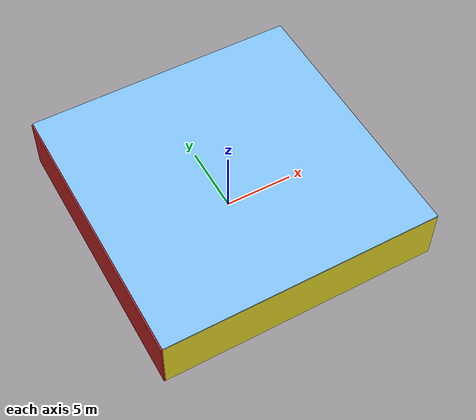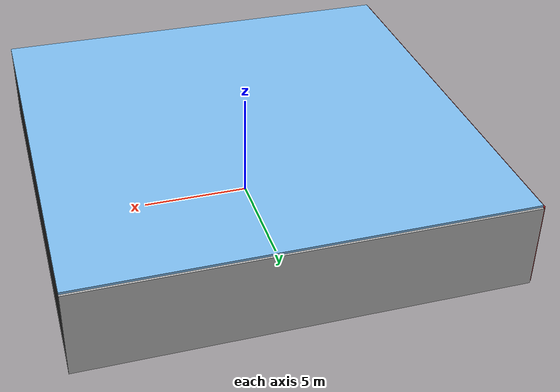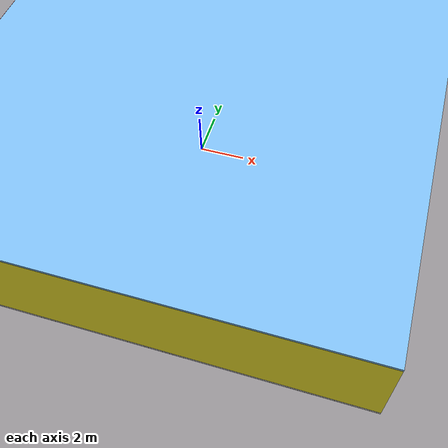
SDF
<sdf version="1.4">
 <world name="default">
  <physics type="ode">
   <max_step_size>0.001</max_step_size>
   <real_time_factor>1</real_time_factor>
   <real_time_update_rate>1000</real_time_update_rate>
   <gravity>0 0 -9.8</gravity>
  </physics>
  <scene><ambient>0.4 0.4 0.4 1</ambient><background>0.7 0.7 0.7 1</background><shadows>1</shadows></scene>
  <model name="Surrounding">
   <static>1</static>
   <link name="Ceiling">
    <collision name="Ceiling_Collision"><geometry><box><size>20 20 0.1</size></box></geometry></collision>
    <visual name="Ceiling_Visual">
     <geometry><box><size>20 20 0.1</size></box></geometry>
     <material>
      <script><uri>file://media/materials/scripts/gazebo.material</uri><name>Gazebo/SkyBlue</name></script>
     </material>
    </visual>
    <pose>0 0 4.05 0 0 0</pose>
   </link>
   <link name="Wall_South">
    <collision name="Wall_South_Collision">
     <geometry><box><size>20 0 4</size></box></geometry>
     <pose>0 0 2 0 -0 0</pose>
    </collision>
    <visual name="Wall_South_Visual">
     <pose>0 0 2 0 -0 0</pose>
     <geometry><box><size>20 0 4</size></box></geometry>
     <material>
      <script><uri>file://media/materials/scripts/gazebo.material</uri><name>Gazebo/YellowGlow</name></script>
     </material>
    </visual>
    <velocity_decay><linear>0</linear><angular>0</angular></velocity_decay>
    <pose>0 -10 0 0 -0 0</pose>
   </link>
   <link name="Wall_East">
    <collision name="Wall_21_Collision">
     <geometry><box><size>20 0 4</size></box></geometry>
     <pose>0 0 2 0 -0 0</pose>
    </collision>
    <visual name="Wall_21_Visual">
     <pose>0 0 2 0 -0 0</pose>
     <geometry><box><size>20 0 4</size></box></geometry>
     <material>
      <script><uri>file://media/materials/scripts/gazebo.material</uri><name>Gazebo/FlatBlack</name></script>
     </material>
    </visual>
    <velocity_decay><linear>0</linear><angular>0</angular></velocity_decay>
    <pose>10 0 0 0 -0 1.5708</pose>
   </link>
   <link name="Wall_North">
    <collision name="Wall_22_Collision">
     <geometry><box><size>20 0.2 4</size></box></geometry>
     <pose>0 0 2 0 -0 0</pose>
    </collision>
    <visual name="Wall_22_Visual">
     <pose>0 0 2 0 -0 0</pose>
     <geometry><box><size>20 0.2 4</size></box></geometry>
     <material>
      <script><uri>file://media/materials/scripts/gazebo.material</uri><name>Gazebo/CloudySky</name></script>
     </material>
    </visual>
    <velocity_decay><linear>0</linear><angular>0</angular></velocity_decay>
    <pose>0 10 0 0 -0 0</pose>
   </link>
   <link name="Wall_West">
    <collision name="Wall_23_Collision">
     <geometry><box><size>20 0.2 4</size></box></geometry>
     <pose>0 0 2 0 -0 0</pose>
    </collision>
    <visual name="Wall_23_Visual">
     <pose>0 0 2 0 -0 0</pose>
     <geometry><box><size>20 0.2 4</size></box></geometry>
     <material>
      <script><uri>file://media/materials/scripts/gazebo.material</uri><name>Gazebo/RedGlow</name></script>
     </material>
    </visual>
    <velocity_decay><linear>0</linear><angular>0</angular></velocity_decay>
    <pose>-10 0 0 0 0 -1.5708</pose>
   </link>
   <link name="Ground_link">
    <collision name="collision">
     <pose>0 0 .05 0 -0 0</pose>
     <geometry><box><size>20 20 0.1</size></box></geometry>
    </collision>
    <visual name="visual">
     <pose>0 0 .05 0 -0 0</pose>
     <geometry><box><size>20 20 0.1</size></box></geometry>
     <material>
      <script><uri>file://media/materials/scripts/gazebo.material</uri><name>Gazebo/White</name></script>
     </material>
    </visual>
   </link>
   <static>1</static>
  </model>
  <spherical_coordinates>
   <surface_model>EARTH_WGS84</surface_model>
   <latitude_deg>0</latitude_deg>
   <longitude_deg>0</longitude_deg>
   <elevation>0</elevation>
   <heading_deg>0</heading_deg>
  </spherical_coordinates>
  <light name="lightball_0" type="diffuse">
   <diffuse>0.8 0.8 0.8 1</diffuse>
   <specular>0.2 0.2 0.2 1</specular>
   <attenuation>
    <range>100</range>
    <constant>0.7</constant>
    <linear>0.01</linear>
    <quadratic>0.001</quadratic>
   </attenuation>
   <direction>-0.5 0.1 -0.9</direction>
   <pose>-3.55795429675 1.38139529198 1.88055291075 0 0 0</pose>
  </light>
  <light name="lightball_1" type="diffuse">
   <diffuse>0.8 0.8 0.8 1</diffuse>
   <specular>0.2 0.2 0.2 1</specular>
   <attenuation>
    <range>100</range>
    <constant>0.7</constant>
    <linear>0.01</linear>
    <quadratic>0.001</quadratic>
   </attenuation>
   <direction>-0.5 0.1 -0.9</direction>
   <pose>4.1019749367 2.01692981164 3.43761933665 0 0 0</pose>
  </light>
  <light name="lightball_2" type="diffuse">
   <diffuse>0.8 0.8 0.8 1</diffuse>
   <specular>0.2 0.2 0.2 1</specular>
   <attenuation>
    <range>100</range>
    <constant>0.7</constant>
    <linear>0.01</linear>
    <quadratic>0.001</quadratic>
   </attenuation>
   <direction>-0.5 0.1 -0.9</direction>
   <pose>5.73428166819 6.55030004608 2.99337081342 0 0 0</pose>
  </light>
  <light name="lightball_3" type="diffuse">
   <diffuse>0.8 0.8 0.8 1</diffuse>
   <specular>0.2 0.2 0.2 1</specular>
   <attenuation>
    <range>100</range>
    <constant>0.7</constant>
    <linear>0.01</linear>
    <quadratic>0.001</quadratic>
   </attenuation>
   <direction>-0.5 0.1 -0.9</direction>
   <pose>7.52283356932 3.3150471574 3.4910726107 0 0 0</pose>
  </light>
  <light name="lightball_4" type="diffuse">
   <diffuse>0.8 0.8 0.8 1</diffuse>
   <specular>0.2 0.2 0.2 1</specular>
   <attenuation>
    <range>100</range>
    <constant>0.7</constant>
    <linear>0.01</linear>
    <quadratic>0.001</quadratic>
   </attenuation>
   <direction>-0.5 0.1 -0.9</direction>
   <pose>0.0176570866603 4.56041565007 2.98865253659 0 0 0</pose>
  </light>
  <light name="lightball_5" type="diffuse">
   <diffuse>0.8 0.8 0.8 1</diffuse>
   <specular>0.2 0.2 0.2 1</specular>
   <attenuation>
    <range>100</range>
    <constant>0.7</constant>
    <linear>0.01</linear>
    <quadratic>0.001</quadratic>
   </attenuation>
   <direction>-0.5 0.1 -0.9</direction>
   <pose>-9.68251081821 3.00190455369 2.26370231458 0 0 0</pose>
  </light>
  <light name="lightball_6" type="diffuse">
   <diffuse>0.8 0.8 0.8 1</diffuse>
   <specular>0.2 0.2 0.2 1</specular>
   <attenuation>
    <range>100</range>
    <constant>0.7</constant>
    <linear>0.01</linear>
    <quadratic>0.001</quadratic>
   </attenuation>
   <direction>-0.5 0.1 -0.9</direction>
   <pose>-8.28108436364 3.31739729137 3.41568776252 0 0 0</pose>
  </light>
  <light name="lightball_7" type="diffuse">
   <diffuse>0.8 0.8 0.8 1</diffuse>
   <specular>0.2 0.2 0.2 1</specular>
   <attenuation>
    <range>100</range>
    <constant>0.7</constant>
    <linear>0.01</linear>
    <quadratic>0.001</quadratic>
   </attenuation>
   <direction>-0.5 0.1 -0.9</direction>
   <pose>1.05083699234 9.10865262736 0.849671388936 0 0 0</pose>
  </light>
  <light name="lightball_8" type="diffuse">
   <diffuse>0.8 0.8 0.8 1</diffuse>
   <specular>0.2 0.2 0.2 1</specular>
   <attenuation>
    <range>100</range>
    <constant>0.7</constant>
    <linear>0.01</linear>
    <quadratic>0.001</quadratic>
   </attenuation>
   <direction>-0.5 0.1 -0.9</direction>
   <pose>-5.37632468472 -5.51234656287 2.20743293471 0 0 0</pose>
  </light>
  <light name="lightball_9" type="diffuse">
   <diffuse>0.8 0.8 0.8 1</diffuse>
   <specular>0.2 0.2 0.2 1</specular>
   <attenuation>
    <range>100</range>
    <constant>0.7</constant>
    <linear>0.01</linear>
    <quadratic>0.001</quadratic>
   </attenuation>
   <direction>-0.5 0.1 -0.9</direction>
   <pose>8.62715297983 0.871671295505 3.66208352639 0 0 0</pose>
  </light>
  <include>
   <uri>model://textured_shapes</uri>
   <pose>-4.00349874968 1.47181966361 0 0 0 1.26260197735</pose>
  </include>
  <include><uri>model://table</uri><pose>-0.99367484156 1.31491106031 0 0 0 2.13751151331</pose></include>
  <include>
   <uri>model://textured_shapes</uri>
   <pose>0.918325968027 -0.80066882535 0 0 0 2.07815592342</pose>
  </include>
  <include>
   <uri>model://textured_shapes</uri>
   <pose>3.8141084328 -4.61811667257 0 0 0 0.812450857698</pose>
  </include>
  <include>
   <uri>model://construction_cone</uri>
   <pose>5.24899772532 7.29948824414 0 0 0 1.24088478068</pose>
  </include>
 </world>
</sdf>

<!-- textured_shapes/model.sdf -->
<sdf version="1.6">
  <model name="textured_shapes">
    <pose>0 0 0.5 0 0 0</pose>
    <link name="box">
      <pose>0 -1.5 0 0 0 0</pose>
      <collision name="collision">
        <geometry>
          <box>
            <size>1 1 1</size>
          </box>
        </geometry>
      </collision>
      <visual name="visual">
        <geometry>
          <box>
            <size>1 1 1</size>
          </box>
        </geometry>
        <material>
          <script>
            <uri>model://../model_source/models/textured_shapes/materials/scripts</uri>
            <uri>model://../model_source/models/textured_shapes/materials/textures</uri>
            <name>TexturedShape/Squares</name>
          </script>
        </material>
      </visual>
    </link>
    <link name="sphere">
      <collision name="collision">
        <geometry>
          <sphere>
            <radius>0.5</radius>
          </sphere>
        </geometry>
      </collision>
      <visual name="visual">
        <geometry>
          <sphere>
            <radius>0.5</radius>
          </sphere>
        </geometry>
        <material>
          <script>
            <uri>model://../model_source/models/textured_shapes/materials/scripts</uri>
            <uri>model://../model_source/models/textured_shapes/materials/textures</uri>
            <name>TexturedShape/Squares</name>
          </script>
        </material>
      </visual>
    </link>
    <link name="cylinder">
      <pose>0 1.5 0 0 0 0</pose>
      <collision name="collision">
        <geometry>
          <cylinder>
            <radius>0.5</radius>
            <length>1</length>
          </cylinder>
        </geometry>
      </collision>
      <visual name="visual">
        <geometry>
          <cylinder>
            <radius>0.5</radius>
            <length>1</length>
          </cylinder>
        </geometry>
        <material>
          <script>
            <uri>model://../model_source/models/textured_shapes/materials/scripts</uri>
            <uri>model://../model_source/models/textured_shapes/materials/textures</uri>
            <name>TexturedShape/Squares</name>
          </script>
        </material>
      </visual>
    </link>
  </model>
</sdf>

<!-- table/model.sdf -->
<sdf version="1.5">
  <model name="table">
    <static>true</static>
    <link name="link">
      <collision name="surface">
        <pose>0 0 1.0 0 0 0</pose>
        <geometry>
          <box>
            <size>1.5 0.8 0.03</size>
          </box>
        </geometry>
        <surface>
          <friction>
            <ode>
              <mu>0.6</mu>
              <mu2>0.6</mu2>
            </ode>
          </friction>
        </surface>
      </collision>
      <visual name="visual1">
        <pose>0 0 1.0 0 0 0</pose>
        <geometry>
          <box>
            <size>1.5 0.8 0.03</size>
          </box>
        </geometry>
        <material>
          <script>
            <uri>model://media/materials/scripts/gazebo.material</uri>
            <name>Gazebo/Wood</name>
          </script>
        </material>
      </visual>
      <collision name="front_left_leg">
        <pose>0.68 0.38 0.5 0 0 0</pose>
        <geometry>
          <cylinder>
            <radius>0.02</radius>
            <length>1.0</length>
          </cylinder>
        </geometry>
      </collision>
      <visual name="front_left_leg">
        <pose>0.68 0.38 0.5 0 0 0</pose>
        <geometry>
          <cylinder>
            <radius>0.02</radius>
            <length>1.0</length>
          </cylinder>
        </geometry>
        <material>
          <script>
            <uri>model://media/materials/scripts/gazebo.material</uri>
            <name>Gazebo/Grey</name>
          </script>
        </material>
      </visual>
      <collision name="front_right_leg">
        <pose>0.68 -0.38 0.5 0 0 0</pose>
        <geometry>
          <cylinder>
            <radius>0.02</radius>
            <length>1.0</length>
          </cylinder>
        </geometry>
      </collision>
      <visual name="front_right_leg">
        <pose>0.68 -0.38 0.5 0 0 0</pose>
        <geometry>
          <cylinder>
            <radius>0.02</radius>
            <length>1.0</length>
          </cylinder>
        </geometry>
        <material>
          <script>
            <uri>model://media/materials/scripts/gazebo.material</uri>
            <name>Gazebo/Grey</name>
          </script>
        </material>
      </visual>
      <collision name="back_right_leg">
        <pose>-0.68 -0.38 0.5 0 0 0</pose>
        <geometry>
          <cylinder>
            <radius>0.02</radius>
            <length>1.0</length>
          </cylinder>
        </geometry>
      </collision>
      <visual name="back_right_leg">
        <pose>-0.68 -0.38 0.5 0 0 0</pose>
        <geometry>
          <cylinder>
            <radius>0.02</radius>
            <length>1.0</length>
          </cylinder>
        </geometry>
        <material>
          <script>
            <uri>model://media/materials/scripts/gazebo.material</uri>
            <name>Gazebo/Grey</name>
          </script>
        </material>
      </visual>
      <collision name="back_left_leg">
        <pose>-0.68 0.38 0.5 0 0 0</pose>
        <geometry>
          <cylinder>
            <radius>0.02</radius>
            <length>1.0</length>
          </cylinder>
        </geometry>
      </collision>
      <visual name="back_left_leg">
        <pose>-0.68 0.38 0.5 0 0 0</pose>
        <geometry>
          <cylinder>
            <radius>0.02</radius>
            <length>1.0</length>
          </cylinder>
        </geometry>
        <material>
          <script>
            <uri>model://media/materials/scripts/gazebo.material</uri>
            <name>Gazebo/Grey</name>
          </script>
        </material>
      </visual>
    </link>
  </model>
</sdf>

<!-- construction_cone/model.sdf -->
<sdf version="1.5">
  <model name="Construction Cone">
    <link name="link">
      <collision name="collision">
        <geometry>
          <mesh>
            <scale>10 10 10</scale>
            <uri>file://isr-testbed/construction_cone/meshes/construction_cone.dae</uri>
          </mesh>
        </geometry>
      </collision>
      <visual name="visual">
        <geometry>
          <mesh>
            <scale>10 10 10</scale>
            <uri>file://isr-testbed/construction_cone/meshes/construction_cone.dae</uri>
          </mesh>
        </geometry>
      </visual>
    </link>
  </model>
</sdf>
